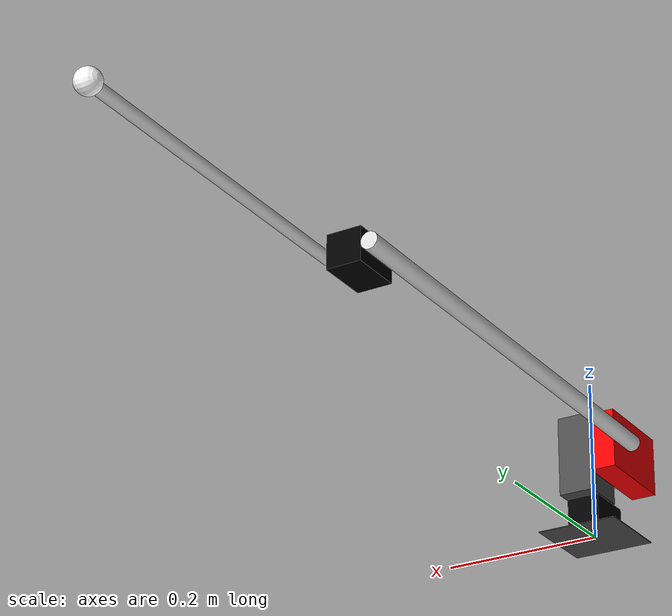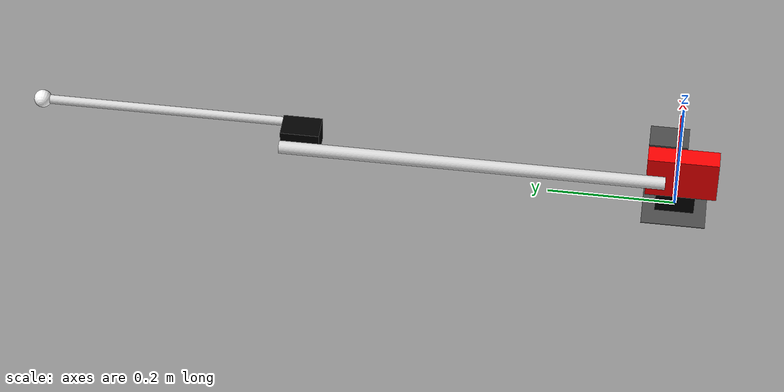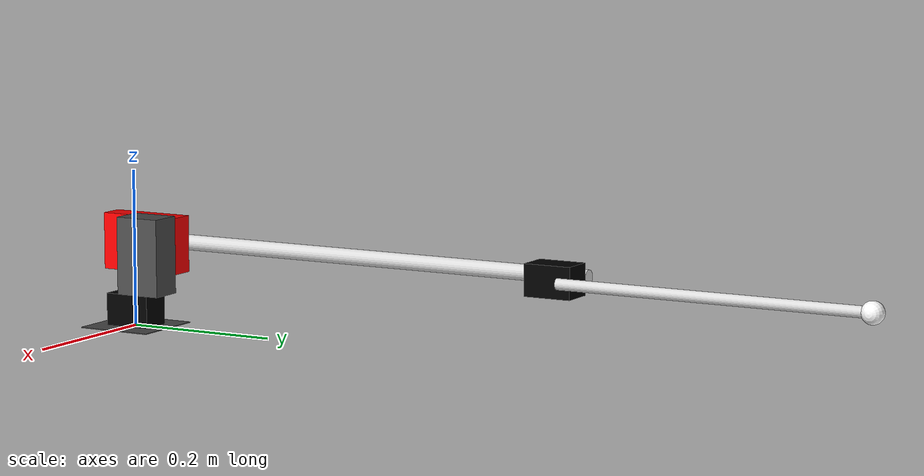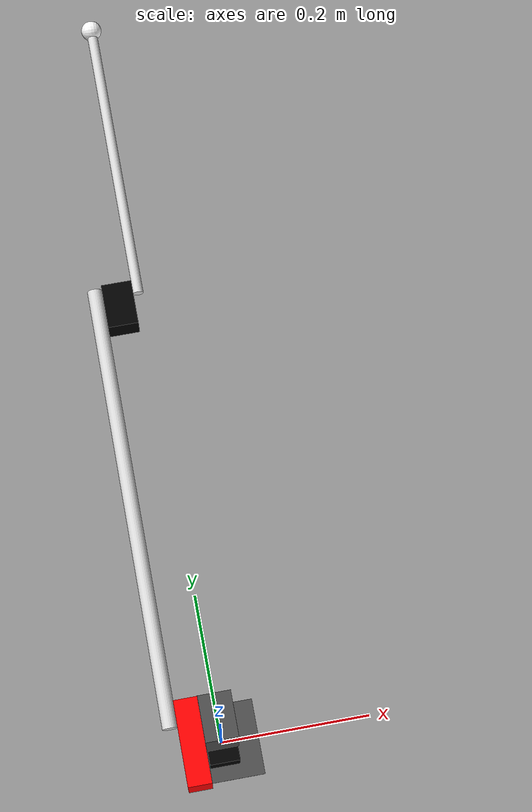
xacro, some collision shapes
<?xml version="1.0"?>
<robot name="arm" xmlns:xacro="http://ros.org/wiki/xacro">

  <!-- Material and Colors-->
  <material name="black">
    <color rgba="${0/255} ${0/255} ${0/255} 1.0"/>
  </material>
  <material name="dark_grey">
    <color rgba="${105/255} {105/255} ${105/255} 1.0"/>
  </material>
  <material name="grey">
    <color rgba="${128/255} ${128/255} ${128/255} 1.0"/>
  </material>
  <material name="light_grey">
    <color rgba="${221/255} ${221/255} ${221/255} 1"/>
  </material>
  <material name="white">
    <color rgba="${255/255} ${255/255} ${255/255} 1.0"/>
  </material>
  <material name="red">
    <color rgba="${255/255} ${0/255} ${0/255} 1.0"/>
  </material>

    <!-- General Variables-->
    <xacro:property name="pi" value="3.1415269" />

    <!-- Mesh files-->
    <xacro:property name="mesh_file_tip" value="package://mav_arm_force_controlled/meshes/tip.stl" />
    <xacro:property name="mesh_file_tube1" value="package://mav_arm_force_controlled/meshes/tube1.stl" />
    <xacro:property name="mesh_file_actuator1" value="package://mav_arm_force_controlled/meshes/actuator1.stl" />

    <!-- Mesh files are in mm. All mesh files are scaled by the factor 10000-->
    <xacro:property name="mesh_scale" value="0.001" />

    <!-- First element, Base Plate-->

    <xacro:property name="Baseplate_box_length" value="0.1" />
    <xacro:property name="Baseplate_box_width" value="0.1" />
    <xacro:property name="Baseplate_box_depth" value="0.001" />

    <xacro:property name="Baseplate_mass" value="0.040063354" />

    <xacro:property name="Baseplate_cog_x" value="0.025202079" />
    <xacro:property name="Baseplate_cog_y" value="0.014500000" />
    <xacro:property name="Baseplate_cog_z" value="0.000000000" />
    <xacro:property name="Baseplate_ixx" value="0.000035649" />
    <xacro:property name="Baseplate_ixy" value="0.000014640" />
    <xacro:property name="Baseplate_ixz" value="0.000000000" />
    <xacro:property name="Baseplate_iyy" value="0.000091991" />
    <xacro:property name="Baseplate_iyz" value="0.000000000" />
    <xacro:property name="Baseplate_izz" value="0.000073356" />

  <link name="base_plate">
    <visual>
      <geometry>
        <box size="${Baseplate_box_length} ${Baseplate_box_width} ${Baseplate_box_depth}"/>
      </geometry>
      <origin rpy="0 0 0" xyz="0 0 0"/>
      <material name="dark_grey"/>
    </visual>
    <collision>
      <geometry>
        <box size="${Baseplate_box_length} ${Baseplate_box_width} ${Baseplate_box_depth}"/>
      </geometry>
    </collision>
    <inertia>
      <mass value="${Baseplate_mass}"/>
      <inertia ixx="${Baseplate_ixx}" ixy="${Baseplate_ixy}" ixz="${Baseplate_ixz}" iyy="${Baseplate_iyy}" iyz="${Baseplate_iyz}" izz="${Baseplate_izz}" />
    </inertia>
  </link>

  <joint name="baseplate_to_actuator3" type="fixed">
    <parent link="base_plate"/>
    <child link="actuator3"/>
    <origin rpy="0 0 0" xyz="0 0 ${Baseplate_box_depth}"/>
  </joint>

  <xacro:property name="actuator3_box_x" value="0.04" />
  <xacro:property name="actuator3_box_y" value="0.061" />
  <xacro:property name="actuator3_box_z" value="0.041" />

  <xacro:property name="Baseplate_mass" value="0.22" />

  <xacro:property name="Baseplate_cog_x" value="0.429478272026" />
  <xacro:property name="Baseplate_cog_y" value="0.001212846812" />
  <xacro:property name="Baseplate_cog_z" value="0.268013482827" />
  <xacro:property name="Baseplate_ixx" value="0.000035649" />
  <xacro:property name="Baseplate_ixy" value="0.000014640" />
  <xacro:property name="Baseplate_ixz" value="0.000000000" />
  <xacro:property name="Baseplate_iyy" value="0.000091991" />
  <xacro:property name="Baseplate_iyz" value="0.000000000" />
  <xacro:property name="Baseplate_izz" value="0.000073356" />

  <link name="actuator3">
    <visual>
      <geometry>
        <box size="${actuator3_box_x} ${actuator3_box_y} ${actuator3_box_z}"/>
      </geometry>
      <origin rpy="0 0 0" xyz="0 0 ${actuator3_box_z/2}"/>
      <origin rpy="0 0 0" xyz="0 0 ${actuator3_box_z/2}"/>
      <material name="black"/>
    </visual>
    <collision>
      <geometry>
        <box size="${actuator3_box_x} ${actuator3_box_y} ${actuator3_box_z}"/>
      </geometry>
    </collision>
    <inertia>
      <mass value="${Baseplate_mass}"/>
      <inertia ixx="0.00003691125" ixy="0" ixz="0" iyy="0.00005986125" iyz="0" izz="0.0000607725" />
    </inertia>
  </link>

  <joint name="actuator3_to_connectingplate" type="continuous">
    <axis rpy="0 0 0" xyz="0 0 1"/>
    <parent link="actuator3"/>
    <child link="connectingbox"/>
    <origin xyz="0 0.01755 0.041"/>
  </joint>

  <link name="connectingbox">
    <visual>
      <geometry>
        <box size="0.043 0.06 0.0995"/>
      </geometry>
      <origin rpy="0 0 0" xyz="0 0 0.04975"/>
      <material name="dark_grey"/>
    </visual>
    <collision>
      <geometry>
        <box size="0.043 0.06 0.0995"/>
      </geometry>
    </collision>
    <inertia>
      <mass value="0.01"/>
      <inertia ixx="0.0012" ixy="0" ixz="0" iyy="0" iyz="0" izz="0.0012" />
    </inertia>
  </link>

  <joint name="connectingbox_to_actuator2" type="fixed">
    <parent link="connectingbox"/>
    <child link="actuator2"/>
    <origin xyz="-0.0215 0 0.06"/>
  </joint>

  <link name="actuator2">
    <visual>
      <geometry>
        <box size="0.031 0.11 0.073"/>
      </geometry>
      <origin rpy="0 0 0" xyz="-0.0155 -0.025 0"/>
      <material name="red"/>
    </visual>
    <collision>
      <geometry>
        <box size="0.031 0.11 0.073"/>
      </geometry>
    </collision>
    <inertia>
      <mass value="0.01"/>
      <inertia ixx="0.0012" ixy="0" ixz="0" iyy="0" iyz="0" izz="0.0012" />
    </inertia>
  </link>

  <joint name="actuator2_to_tube2" type="continuous">
    <axis rpy="0 0 0" xyz="1 0 0"/>
    <parent link="actuator2"/>
    <child link="tube2"/>
    <origin xyz="-0.031 0 0"/>
  </joint>

  <link name="tube2">
    <visual>
      <geometry>
        <cylinder length="0.6" radius="0.01"/>
      </geometry>
      <origin rpy="1.570796 0 0" xyz="-0.01 0.3 0"/>
      <material name="light_grey"/>
    </visual>
    <collision>
      <geometry>
        <cylinder length="0.6" radius="0.01"/>
      </geometry>
    </collision>
    <inertia>
      <mass value="0.01"/>
      <inertia ixx="0.0012" ixy="0" ixz="0" iyy="0" iyz="0" izz="0.0012" />
    </inertia>
  </link>

    <joint name="tube2_to_actuator1" type="fixed">
      <parent link="tube2"/>
      <child link="actuator1"/>
      <origin rpy="0 1.5707963 0" xyz="0 0.6 0"/>
    </joint>

  <link name="actuator1">
    <visual>
      <geometry>
        <box size="0.04 0.061 0.041"/>
      </geometry>
      <origin rpy="0 0 0" xyz="0 -0.0305 0.0205"/>
      <material name="black"/>
    </visual>
    <collision>
      <geometry>
        <box size="0.04 0.061 0.041"/>
      </geometry>
    </collision>
    <inertia>
      <mass value="0.22"/>
      <inertia ixx="0.00003691125" ixy="0" ixz="0" iyy="0.00005986125" iyz="0" izz="0.0000607725" />
    </inertia>
  </link>

  <joint name="actuator1_to_tube1" type="continuous">
    <axis rpy="0 0 0" xyz="0 0 1"/>
    <parent link="actuator1"/>
    <child link="tube1"/>
    <origin xyz="0 -0.013 0.041"/>
  </joint>

    <link name="tube1">
      <visual>
        <geometry>
          <cylinder length="0.4" radius="0.007"/>
        </geometry>
        <origin rpy="1.570796 0 0" xyz="0 0.2 0.007"/>
        <material name="light_grey"/>
      </visual>
      <collision>
        <geometry>
          <cylinder length="0.4" radius="0.007"/>
        </geometry>
      </collision>
      <inertia>
        <mass value="0.01"/>
        <inertia ixx="0.0012" ixy="0" ixz="0" iyy="0" iyz="0" izz="0.0012" />
      </inertia>
    </link>

    <joint name="tube1_to_tip" type="fixed">
      <parent link="tube1"/>
      <child link="tip"/>
      <origin xyz="0 0.4 0.007"/>
    </joint>

    <link name="tip">
      <visual>
      <geometry>
          <mesh filename="${mesh_file_tip}"
            scale="${mesh_scale} ${mesh_scale} ${mesh_scale}"/>

        </geometry>
        <origin rpy="${-pi/2} 0 0" xyz="0 0 0"/>
        <material name="white"/>
      </visual>
      <collision>
        <geometry>
          <sphere radius="0.014"/>
        </geometry>
      </collision>
      <inertia>
        <mass value="0.01"/>
        <inertia ixx="0.00028" ixy="0" ixz="0" iyy="0.00028" iyz="0" izz="0.00028" />
      </inertia>
    </link>
</robot>
